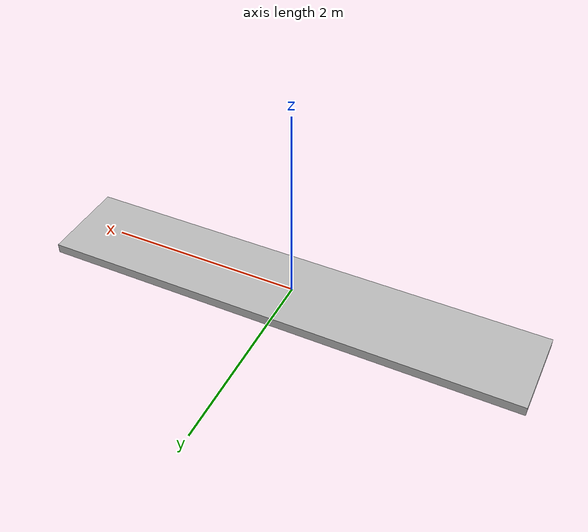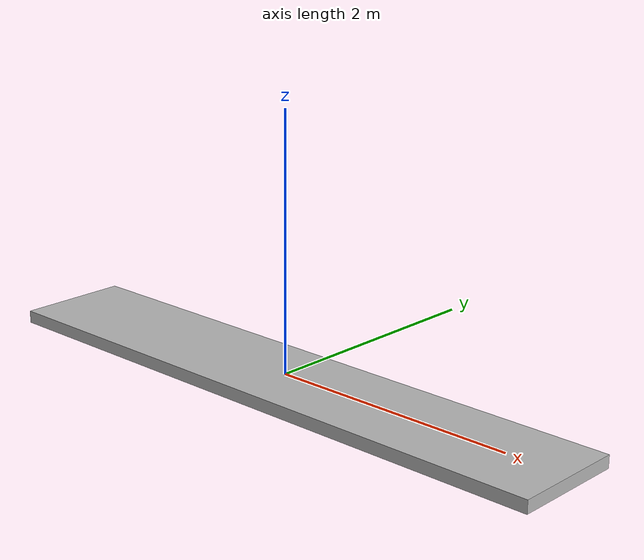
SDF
<?xml version="1.0"?>
<sdf version="1.7">
  <model name="ground">
    <link name="ground">
      <inertial>
        <mass>1</mass>
        <!-- Inertia values were calculated to be consistent with the mass and
             geometry size, assuming a uniform density. -->
        <inertia>
          <ixx>100</ixx>
          <ixy>0</ixy>
          <ixz>0</ixz>
          <iyy>100</iyy>
          <iyz>0</iyz>
          <izz>100</izz>
        </inertia>
      </inertial>
      <visual name="box">
        <pose>0 0 -0.05 0 0 0</pose>
        <geometry>
          <box>
            <size>5 0.91 0.1</size>
          </box>
        </geometry>
      </visual>
      <collision name="ground">
          <pose>0 0 -0.05 0 0 0</pose>
            <geometry>
          <box>
            <size>5 0.91 0.1</size>
          </box>
        </geometry>
        <drake:proximity_properties>
          <drake:compliant_hydroelastic/>
          <drake:hydroelastic_modulus> 3.0e7 </drake:hydroelastic_modulus>
          <drake:mesh_resolution_hint> 0.18 </drake:mesh_resolution_hint>
          <drake:hunt_crossley_dissipation>10</drake:hunt_crossley_dissipation>
          <drake:mu_dynamic>1</drake:mu_dynamic>
        </drake:proximity_properties>
      </collision>
    </link>

  </model>
</sdf>
